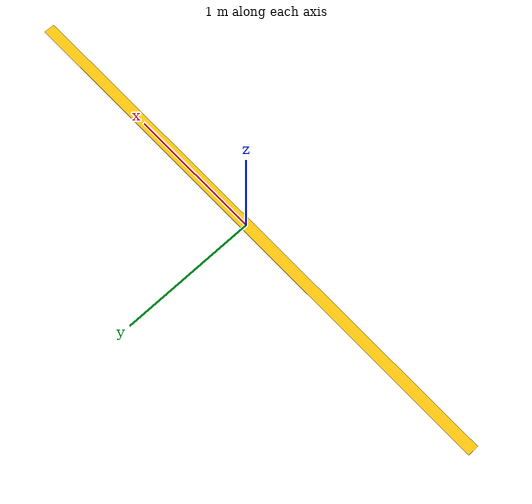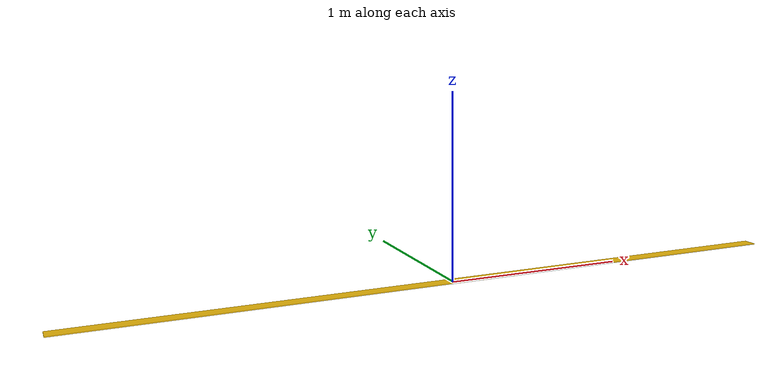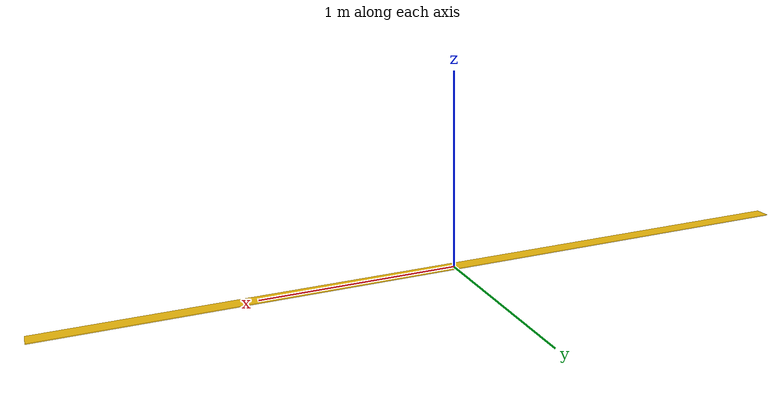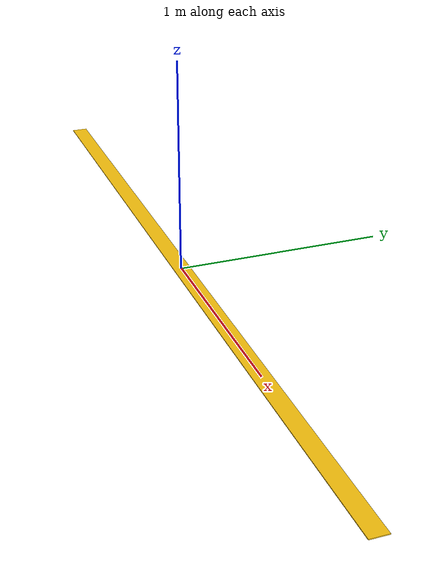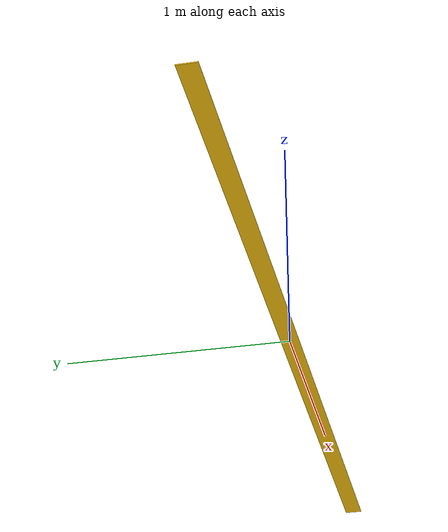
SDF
<?xml version="1.0"?>
<sdf version="1.11">
  <model name="warehouse_floor_marking">
    <static>true</static>
    <link name="link">
      <visual name="strip"><pose>0 0 0.004 0 0 0</pose><geometry><box><size>4.0 0.08 0.004</size></box></geometry><material><ambient>1.0 0.78 0.05 1</ambient><diffuse>1.0 0.78 0.05 1</diffuse><emissive>0.12 0.09 0.0 1</emissive></material></visual>
    </link>
  </model>
</sdf>
